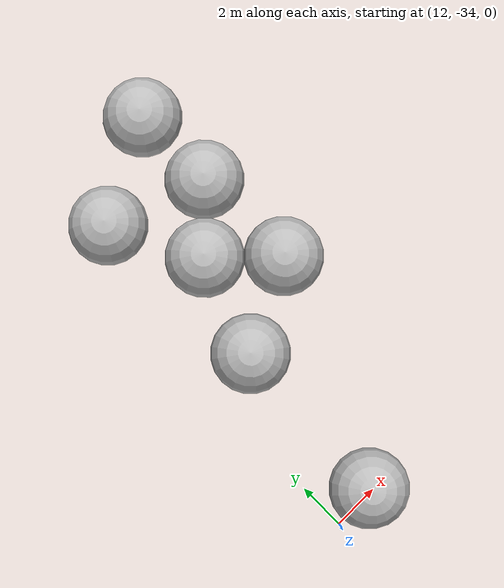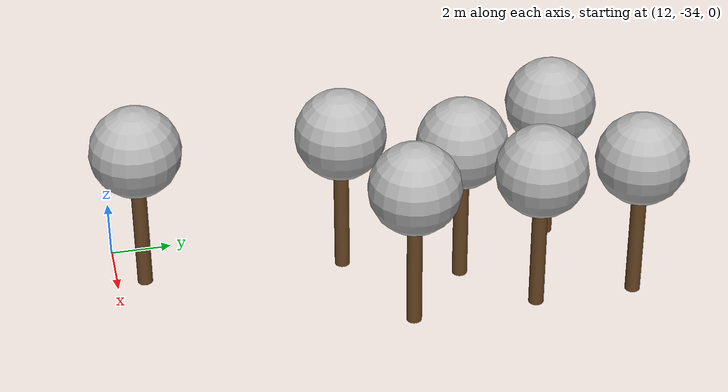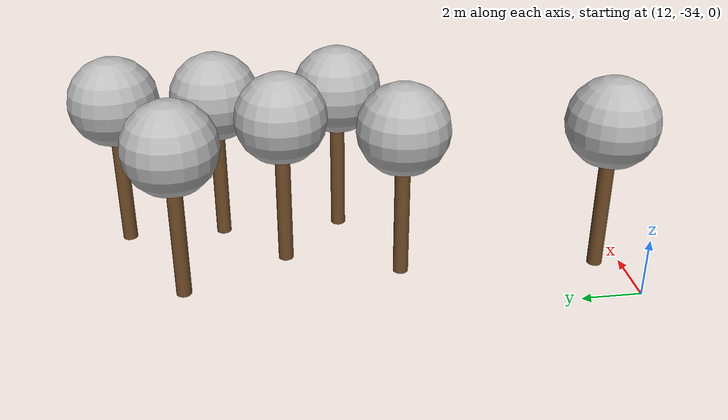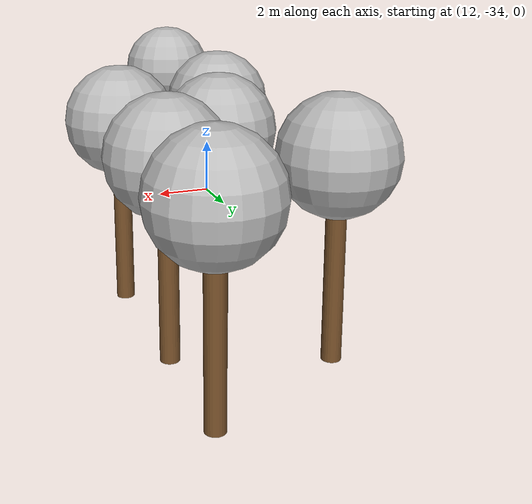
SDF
<sdf version="1.7">
 <world name="default">
  <model name="tree_red_0">
   <static>1</static>
   <link name="link">
    <pose>0 0 0.1 0 -0 0</pose>
    <inertial>
     <mass>666</mass>
     <inertia>
      <ixx>0.0861167</ixx>
      <ixy>0</ixy>
      <ixz>0</ixz>
      <iyy>0.0861167</iyy>
      <iyz>0</iyz>
      <izz>0.0861167</izz>
     </inertia>
    </inertial>
    <collision name="collision_trunk">
     <pose>0 0 2 0 -0 0</pose>
     <geometry><cylinder><radius>0.25</radius><length>4</length></cylinder></geometry>
     <surface>
      <contact>
       <poissons_ratio>0.347</poissons_ratio>
       <elastic_modulus>8.8e+09</elastic_modulus>
       <ode><kp>100000</kp><kd>100</kd><max_vel>100</max_vel><min_depth>0.001</min_depth></ode>
      </contact>
      <friction>
       <torsional>
        <coefficient>1</coefficient>
        <use_patch_radius>0</use_patch_radius>
        <surface_radius>0.01</surface_radius>
       </torsional>
      </friction>
     </surface>
    </collision>
    <collision name="collision_treetop">
     <pose>0 0 5.2 0 -0 0</pose>
     <geometry><sphere><radius>1.5</radius></sphere></geometry>
     <surface>
      <contact>
       <poissons_ratio>0.347</poissons_ratio>
       <elastic_modulus>8.8e+09</elastic_modulus>
       <ode><kp>100000</kp><kd>100</kd><max_vel>100</max_vel><min_depth>0.001</min_depth></ode>
      </contact>
      <friction>
       <torsional>
        <coefficient>1</coefficient>
        <use_patch_radius>0</use_patch_radius>
        <surface_radius>0.01</surface_radius>
       </torsional>
      </friction>
     </surface>
    </collision>
    <visual name="trunk">
     <pose>0 0 2 0 -0 0</pose>
     <geometry><cylinder><radius>0.25</radius><length>4</length></cylinder></geometry>
     <material>
      <script>
       <uri>model://MRS_tree_simples_fire/scripts</uri>
       <uri>model://MRS_tree_simples_fire/materials/textures</uri>
       <name>MRS_tree_simples_fire/Trunk</name>
      </script>
     </material>
    </visual>
    <visual name="treetop">
     <pose>0 0 5.2 0 -0 0</pose>
     <geometry><sphere><radius>1.5</radius></sphere></geometry>
     <material>
      <script>
       <uri>model://MRS_tree_simples_fire/scripts</uri>
       <uri>model://MRS_tree_simples_fire/materials/textures</uri>
       <name>MRS_tree_simples_fire/Treetop</name>
      </script>
     </material>
    </visual>
   </link>
   <pose>17.6197 -20.6674 0 0 -0 0</pose>
  </model>
  <model name="tree_red_2">
   <static>1</static>
   <link name="link">
    <pose>0 0 0.1 0 -0 0</pose>
    <inertial>
     <mass>666</mass>
     <inertia>
      <ixx>0.0861167</ixx>
      <ixy>0</ixy>
      <ixz>0</ixz>
      <iyy>0.0861167</iyy>
      <iyz>0</iyz>
      <izz>0.0861167</izz>
     </inertia>
    </inertial>
    <collision name="collision_trunk">
     <pose>0 0 2 0 -0 0</pose>
     <geometry><cylinder><radius>0.25</radius><length>4</length></cylinder></geometry>
     <surface>
      <contact>
       <poissons_ratio>0.347</poissons_ratio>
       <elastic_modulus>8.8e+09</elastic_modulus>
       <ode><kp>100000</kp><kd>100</kd><max_vel>100</max_vel><min_depth>0.001</min_depth></ode>
      </contact>
      <friction>
       <torsional>
        <coefficient>1</coefficient>
        <use_patch_radius>0</use_patch_radius>
        <surface_radius>0.01</surface_radius>
       </torsional>
      </friction>
     </surface>
    </collision>
    <collision name="collision_treetop">
     <pose>0 0 5.2 0 -0 0</pose>
     <geometry><sphere><radius>1.5</radius></sphere></geometry>
     <surface>
      <contact>
       <poissons_ratio>0.347</poissons_ratio>
       <elastic_modulus>8.8e+09</elastic_modulus>
       <ode><kp>100000</kp><kd>100</kd><max_vel>100</max_vel><min_depth>0.001</min_depth></ode>
      </contact>
      <friction>
       <torsional>
        <coefficient>1</coefficient>
        <use_patch_radius>0</use_patch_radius>
        <surface_radius>0.01</surface_radius>
       </torsional>
      </friction>
     </surface>
    </collision>
    <visual name="trunk">
     <pose>0 0 2 0 -0 0</pose>
     <geometry><cylinder><radius>0.25</radius><length>4</length></cylinder></geometry>
     <material>
      <script>
       <uri>model://MRS_tree_simples_fire/scripts</uri>
       <uri>model://MRS_tree_simples_fire/materials/textures</uri>
       <name>MRS_tree_simples_fire/Trunk</name>
      </script>
     </material>
    </visual>
    <visual name="treetop">
     <pose>0 0 5.2 0 -0 0</pose>
     <geometry><sphere><radius>1.5</radius></sphere></geometry>
     <material>
      <script>
       <uri>model://MRS_tree_simples_fire/scripts</uri>
       <uri>model://MRS_tree_simples_fire/materials/textures</uri>
       <name>MRS_tree_simples_fire/Treetop</name>
      </script>
     </material>
    </visual>
   </link>
   <pose>17.7061 -24.7851 0 0 -0 0</pose>
  </model>
  <model name="tree_red_3">
   <static>1</static>
   <link name="link">
    <pose>0 0 0.1 0 -0 0</pose>
    <inertial>
     <mass>666</mass>
     <inertia>
      <ixx>0.0861167</ixx>
      <ixy>0</ixy>
      <ixz>0</ixz>
      <iyy>0.0861167</iyy>
      <iyz>0</iyz>
      <izz>0.0861167</izz>
     </inertia>
    </inertial>
    <collision name="collision_trunk">
     <pose>0 0 2 0 -0 0</pose>
     <geometry><cylinder><radius>0.25</radius><length>4</length></cylinder></geometry>
     <surface>
      <contact>
       <poissons_ratio>0.347</poissons_ratio>
       <elastic_modulus>8.8e+09</elastic_modulus>
       <ode><kp>100000</kp><kd>100</kd><max_vel>100</max_vel><min_depth>0.001</min_depth></ode>
      </contact>
      <friction>
       <torsional>
        <coefficient>1</coefficient>
        <use_patch_radius>0</use_patch_radius>
        <surface_radius>0.01</surface_radius>
       </torsional>
      </friction>
     </surface>
    </collision>
    <collision name="collision_treetop">
     <pose>0 0 5.2 0 -0 0</pose>
     <geometry><sphere><radius>1.5</radius></sphere></geometry>
     <surface>
      <contact>
       <poissons_ratio>0.347</poissons_ratio>
       <elastic_modulus>8.8e+09</elastic_modulus>
       <ode><kp>100000</kp><kd>100</kd><max_vel>100</max_vel><min_depth>0.001</min_depth></ode>
      </contact>
      <friction>
       <torsional>
        <coefficient>1</coefficient>
        <use_patch_radius>0</use_patch_radius>
        <surface_radius>0.01</surface_radius>
       </torsional>
      </friction>
     </surface>
    </collision>
    <visual name="trunk">
     <pose>0 0 2 0 -0 0</pose>
     <geometry><cylinder><radius>0.25</radius><length>4</length></cylinder></geometry>
     <material>
      <script>
       <uri>model://MRS_tree_simples_fire/scripts</uri>
       <uri>model://MRS_tree_simples_fire/materials/textures</uri>
       <name>MRS_tree_simples_fire/Trunk</name>
      </script>
     </material>
    </visual>
    <visual name="treetop">
     <pose>0 0 5.2 0 -0 0</pose>
     <geometry><sphere><radius>1.5</radius></sphere></geometry>
     <material>
      <script>
       <uri>model://MRS_tree_simples_fire/scripts</uri>
       <uri>model://MRS_tree_simples_fire/materials/textures</uri>
       <name>MRS_tree_simples_fire/Treetop</name>
      </script>
     </material>
    </visual>
   </link>
   <pose>15.5753 -22.7572 0 0 -0 0</pose>
  </model>
  <model name="tree_yellow_2">
   <static>1</static>
   <link name="link">
    <pose>0 0 0.1 0 -0 0</pose>
    <inertial>
     <mass>666</mass>
     <inertia>
      <ixx>0.0861167</ixx>
      <ixy>0</ixy>
      <ixz>0</ixz>
      <iyy>0.0861167</iyy>
      <iyz>0</iyz>
      <izz>0.0861167</izz>
     </inertia>
    </inertial>
    <collision name="collision_trunk">
     <pose>0 0 2 0 -0 0</pose>
     <geometry><cylinder><radius>0.25</radius><length>4</length></cylinder></geometry>
     <surface>
      <contact>
       <poissons_ratio>0.347</poissons_ratio>
       <elastic_modulus>8.8e+09</elastic_modulus>
       <ode><kp>100000</kp><kd>100</kd><max_vel>100</max_vel><min_depth>0.001</min_depth></ode>
      </contact>
      <friction>
       <torsional>
        <coefficient>1</coefficient>
        <use_patch_radius>0</use_patch_radius>
        <surface_radius>0.01</surface_radius>
       </torsional>
      </friction>
     </surface>
    </collision>
    <collision name="collision_treetop">
     <pose>0 0 5.2 0 -0 0</pose>
     <geometry><sphere><radius>1.5</radius></sphere></geometry>
     <surface>
      <contact>
       <poissons_ratio>0.347</poissons_ratio>
       <elastic_modulus>8.8e+09</elastic_modulus>
       <ode><kp>100000</kp><kd>100</kd><max_vel>100</max_vel><min_depth>0.001</min_depth></ode>
      </contact>
      <friction>
       <torsional>
        <coefficient>1</coefficient>
        <use_patch_radius>0</use_patch_radius>
        <surface_radius>0.01</surface_radius>
       </torsional>
      </friction>
     </surface>
    </collision>
    <visual name="trunk">
     <pose>0 0 2 0 -0 0</pose>
     <geometry><cylinder><radius>0.25</radius><length>4</length></cylinder></geometry>
     <material>
      <script>
       <uri>model://MRS_tree_simples_close/scripts</uri>
       <uri>model://MRS_tree_simples_close/materials/textures</uri>
       <name>MRS_tree_simples_close/Trunk</name>
      </script>
     </material>
    </visual>
    <visual name="treetop">
     <pose>0 0 5.2 0 -0 0</pose>
     <geometry><sphere><radius>1.5</radius></sphere></geometry>
     <material>
      <script>
       <uri>model://MRS_tree_simples_close/scripts</uri>
       <uri>model://MRS_tree_simples_close/materials/textures</uri>
       <name>MRS_tree_simples_close/Treetop</name>
      </script>
     </material>
    </visual>
   </link>
   <pose>17.62 -17.3731 0 0 -0 0</pose>
  </model>
  <model name="tree_yellow_4">
   <static>1</static>
   <link name="link">
    <pose>0 0 0.1 0 -0 0</pose>
    <inertial>
     <mass>666</mass>
     <inertia>
      <ixx>0.0861167</ixx>
      <ixy>0</ixy>
      <ixz>0</ixz>
      <iyy>0.0861167</iyy>
      <iyz>0</iyz>
      <izz>0.0861167</izz>
     </inertia>
    </inertial>
    <collision name="collision_trunk">
     <pose>0 0 2 0 -0 0</pose>
     <geometry><cylinder><radius>0.25</radius><length>4</length></cylinder></geometry>
     <surface>
      <contact>
       <poissons_ratio>0.347</poissons_ratio>
       <elastic_modulus>8.8e+09</elastic_modulus>
       <ode><kp>100000</kp><kd>100</kd><max_vel>100</max_vel><min_depth>0.001</min_depth></ode>
      </contact>
      <friction>
       <torsional>
        <coefficient>1</coefficient>
        <use_patch_radius>0</use_patch_radius>
        <surface_radius>0.01</surface_radius>
       </torsional>
      </friction>
     </surface>
    </collision>
    <collision name="collision_treetop">
     <pose>0 0 5.2 0 -0 0</pose>
     <geometry><sphere><radius>1.5</radius></sphere></geometry>
     <surface>
      <contact>
       <poissons_ratio>0.347</poissons_ratio>
       <elastic_modulus>8.8e+09</elastic_modulus>
       <ode><kp>100000</kp><kd>100</kd><max_vel>100</max_vel><min_depth>0.001</min_depth></ode>
      </contact>
      <friction>
       <torsional>
        <coefficient>1</coefficient>
        <use_patch_radius>0</use_patch_radius>
        <surface_radius>0.01</surface_radius>
       </torsional>
      </friction>
     </surface>
    </collision>
    <visual name="trunk">
     <pose>0 0 2 0 -0 0</pose>
     <geometry><cylinder><radius>0.25</radius><length>4</length></cylinder></geometry>
     <material>
      <script>
       <uri>model://MRS_tree_simples_close/scripts</uri>
       <uri>model://MRS_tree_simples_close/materials/textures</uri>
       <name>MRS_tree_simples_close/Trunk</name>
      </script>
     </material>
    </visual>
    <visual name="treetop">
     <pose>0 0 5.2 0 -0 0</pose>
     <geometry><sphere><radius>1.5</radius></sphere></geometry>
     <material>
      <script>
       <uri>model://MRS_tree_simples_close/scripts</uri>
       <uri>model://MRS_tree_simples_close/materials/textures</uri>
       <name>MRS_tree_simples_close/Treetop</name>
      </script>
     </material>
    </visual>
   </link>
   <pose>13.8665 -19.3681 0 0 -0 0</pose>
  </model>
  <model name="tree_yellow_6">
   <static>1</static>
   <link name="link">
    <pose>0 0 0.1 0 -0 0</pose>
    <inertial>
     <mass>666</mass>
     <inertia>
      <ixx>0.0861167</ixx>
      <ixy>0</ixy>
      <ixz>0</ixz>
      <iyy>0.0861167</iyy>
      <iyz>0</iyz>
      <izz>0.0861167</izz>
     </inertia>
    </inertial>
    <collision name="collision_trunk">
     <pose>0 0 2 0 -0 0</pose>
     <geometry><cylinder><radius>0.25</radius><length>4</length></cylinder></geometry>
     <surface>
      <contact>
       <poissons_ratio>0.347</poissons_ratio>
       <elastic_modulus>8.8e+09</elastic_modulus>
       <ode><kp>100000</kp><kd>100</kd><max_vel>100</max_vel><min_depth>0.001</min_depth></ode>
      </contact>
      <friction>
       <torsional>
        <coefficient>1</coefficient>
        <use_patch_radius>0</use_patch_radius>
        <surface_radius>0.01</surface_radius>
       </torsional>
      </friction>
     </surface>
    </collision>
    <collision name="collision_treetop">
     <pose>0 0 5.2 0 -0 0</pose>
     <geometry><sphere><radius>1.5</radius></sphere></geometry>
     <surface>
      <contact>
       <poissons_ratio>0.347</poissons_ratio>
       <elastic_modulus>8.8e+09</elastic_modulus>
       <ode><kp>100000</kp><kd>100</kd><max_vel>100</max_vel><min_depth>0.001</min_depth></ode>
      </contact>
      <friction>
       <torsional>
        <coefficient>1</coefficient>
        <use_patch_radius>0</use_patch_radius>
        <surface_radius>0.01</surface_radius>
       </torsional>
      </friction>
     </surface>
    </collision>
    <visual name="trunk">
     <pose>0 0 2 0 -0 0</pose>
     <geometry><cylinder><radius>0.25</radius><length>4</length></cylinder></geometry>
     <material>
      <script>
       <uri>model://MRS_tree_simples_close/scripts</uri>
       <uri>model://MRS_tree_simples_close/materials/textures</uri>
       <name>MRS_tree_simples_close/Trunk</name>
      </script>
     </material>
    </visual>
    <visual name="treetop">
     <pose>0 0 5.2 0 -0 0</pose>
     <geometry><sphere><radius>1.5</radius></sphere></geometry>
     <material>
      <script>
       <uri>model://MRS_tree_simples_close/scripts</uri>
       <uri>model://MRS_tree_simples_close/materials/textures</uri>
       <name>MRS_tree_simples_close/Treetop</name>
      </script>
     </material>
    </visual>
   </link>
   <pose>14.2717 -26.4887 0 0 -0 0</pose>
  </model>
  <model name="tree_green_13">
   <static>1</static>
   <link name="link">
    <pose>0 0 0.1 0 -0 0</pose>
    <inertial>
     <mass>666</mass>
     <inertia>
      <ixx>0.0861167</ixx>
      <ixy>0</ixy>
      <ixz>0</ixz>
      <iyy>0.0861167</iyy>
      <iyz>0</iyz>
      <izz>0.0861167</izz>
     </inertia>
    </inertial>
    <collision name="collision_trunk">
     <pose>0 0 2 0 -0 0</pose>
     <geometry><cylinder><radius>0.25</radius><length>4</length></cylinder></geometry>
     <surface>
      <contact>
       <poissons_ratio>0.347</poissons_ratio>
       <elastic_modulus>8.8e+09</elastic_modulus>
       <ode><kp>100000</kp><kd>100</kd><max_vel>100</max_vel><min_depth>0.001</min_depth></ode>
      </contact>
      <friction>
       <torsional>
        <coefficient>1</coefficient>
        <use_patch_radius>0</use_patch_radius>
        <surface_radius>0.01</surface_radius>
       </torsional>
      </friction>
     </surface>
    </collision>
    <collision name="collision_treetop">
     <pose>0 0 5.2 0 -0 0</pose>
     <geometry><sphere><radius>1.5</radius></sphere></geometry>
     <surface>
      <contact>
       <poissons_ratio>0.347</poissons_ratio>
       <elastic_modulus>8.8e+09</elastic_modulus>
       <ode><kp>100000</kp><kd>100</kd><max_vel>100</max_vel><min_depth>0.001</min_depth></ode>
      </contact>
      <friction>
       <torsional>
        <coefficient>1</coefficient>
        <use_patch_radius>0</use_patch_radius>
        <surface_radius>0.01</surface_radius>
       </torsional>
      </friction>
     </surface>
    </collision>
    <visual name="trunk">
     <pose>0 0 2 0 -0 0</pose>
     <geometry><cylinder><radius>0.25</radius><length>4</length></cylinder></geometry>
     <material>
      <script>
       <uri>model://MRS_tree_simple/scripts</uri>
       <uri>model://MRS_tree_simple/materials/textures</uri>
       <name>MRS_tree_simple/Trunk</name>
      </script>
     </material>
    </visual>
    <visual name="treetop">
     <pose>0 0 5.2 0 -0 0</pose>
     <geometry><sphere><radius>1.5</radius></sphere></geometry>
     <material>
      <script>
       <uri>model://MRS_tree_simple/scripts</uri>
       <uri>model://MRS_tree_simple/materials/textures</uri>
       <name>MRS_tree_simple/Treetop</name>
      </script>
     </material>
    </visual>
   </link>
   <pose>13.8832 -33.0828 0 0 -0 0</pose>
  </model>
 </world>
</sdf>
